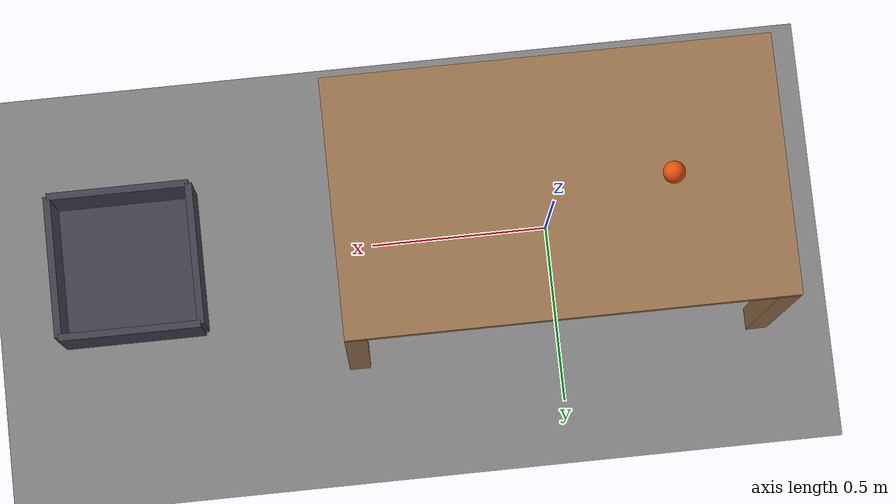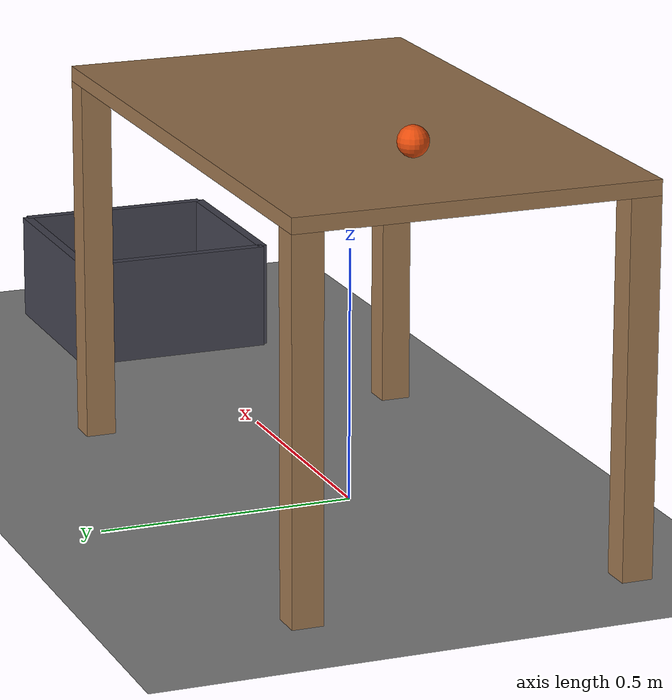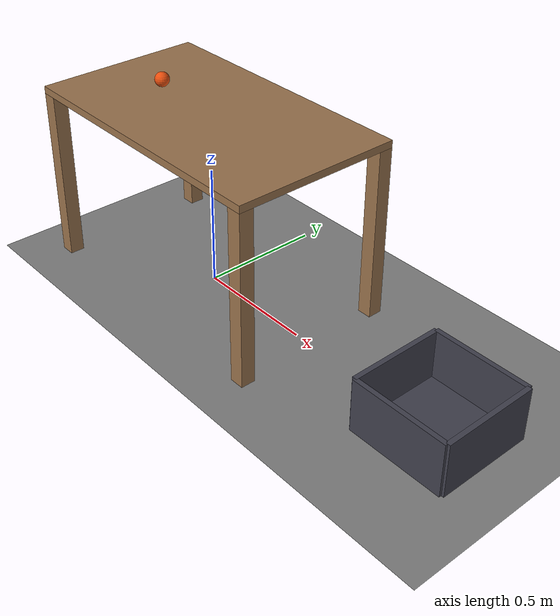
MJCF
<mujoco model="rolling_ball_into_a_bucket">
  <compiler angle="radian"/>
  <option timestep="0.002"/>
  <worldbody>
    <geom name="floor" type="plane" size="6 6 0.1" friction="0.8 0.005 0.002"/>
    <body name="table">
      <geom name="table_top" type="box" pos="0 0 0.735" size="0.6 0.35 0.015" friction="0.8 0.005 0.001" rgba="0.6 0.45 0.3 1"/>
      <geom name="table_near_left_leg" type="box" pos="-0.57 0.32 0.36" size="0.03 0.03 0.36" friction="0.8 0.005 0.001" rgba="0.6 0.45 0.3 1"/>
      <geom name="table_near_right_leg" type="box" pos="-0.57 -0.32 0.36" size="0.03 0.03 0.36" friction="0.8 0.005 0.001" rgba="0.6 0.45 0.3 1"/>
      <geom name="table_far_left_leg" type="box" pos="0.57 0.32 0.36" size="0.03 0.03 0.36" friction="0.8 0.005 0.001" rgba="0.6 0.45 0.3 1"/>
      <geom name="table_far_right_leg" type="box" pos="0.57 -0.32 0.36" size="0.03 0.03 0.36" friction="0.8 0.005 0.001" rgba="0.6 0.45 0.3 1"/>
    </body>
    <body name="bucket">
      <geom name="bucket_base" type="box" pos="1.2 0 0.01" size="0.2 0.2 0.01" friction="0.9 0.01 0.01" solref="0.01 1" rgba="0.25 0.25 0.3 1"/>
      <geom name="bucket_near_wall" type="box" pos="1 0 0.11" size="0.01 0.2 0.11" friction="0.9 0.01 0.01" solref="0.01 1" rgba="0.25 0.25 0.3 1"/>
      <geom name="bucket_far_wall" type="box" pos="1.4 0 0.11" size="0.01 0.2 0.11" friction="0.9 0.01 0.01" solref="0.01 1" rgba="0.25 0.25 0.3 1"/>
      <geom name="bucket_left_wall" type="box" pos="1.2 0.2 0.11" size="0.2 0.01 0.11" friction="0.9 0.01 0.01" solref="0.01 1" rgba="0.25 0.25 0.3 1"/>
      <geom name="bucket_right_wall" type="box" pos="1.2 -0.2 0.11" size="0.2 0.01 0.11" friction="0.9 0.01 0.01" solref="0.01 1" rgba="0.25 0.25 0.3 1"/>
    </body>
    <body name="ball" pos="-0.3 0 0.78">
      <freejoint/>
      <geom name="ball" type="sphere" pos="0 0 0" size="0.03" mass="0.1" condim="6" friction="0.8 0.005 0.001" solref="0.01 1" rgba="0.9 0.3 0.05 1"/>
    </body>
  </worldbody>
  <keyframe>
    <key name="start" qpos="-0.3 0 0.78 1 0 0 0" qvel="1.6 0 0 0 53.333 0"/>
  </keyframe>
</mujoco>
